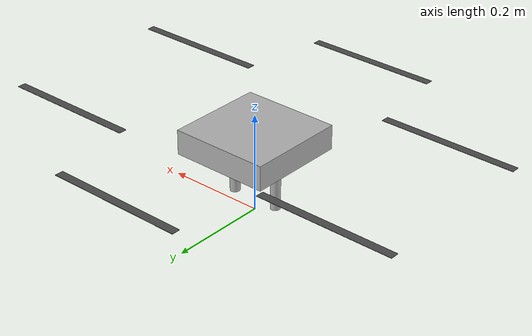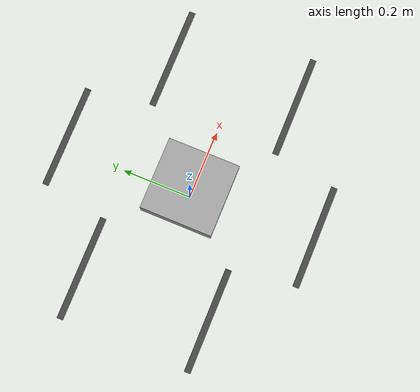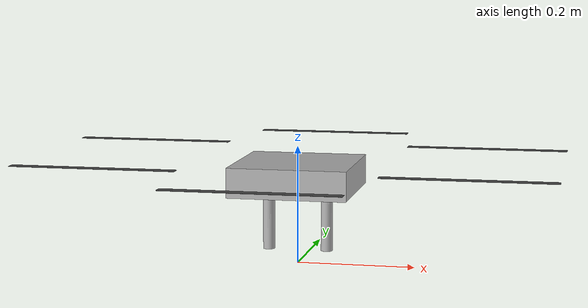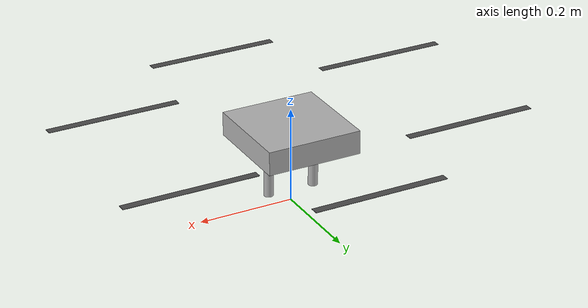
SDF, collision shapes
<?xml version='1.0'?>
<sdf version='1.7'>
<model name='hexacopter_unified'>
  <link name='base_link'>
    <pose>0 0 0.1483 0 0 0</pose>
    <inertial>
      <mass>2</mass>
      <inertia>
        <ixx>0.08</ixx>
        <ixy>0.0</ixy>
        <ixz>0.0</ixz>
        <iyy>0.08</iyy>
        <iyz>0.0</iyz>
        <izz>0.16</izz>
      </inertia>
    </inertial>

    <visual name='visual_box'>
      <pose>0 0 0.0017 0 0 0</pose>
      <geometry><box><size>0.2 0.2 0.05</size></box></geometry>
      <material><ambient>0.7 0.7 0.7 1</ambient><diffuse>0.7 0.7 0.7 1</diffuse></material>
    </visual>
    <collision name='collision_box'>
      <pose>0 0 0.0017 0 0 0</pose>
      <geometry><box><size>0.2 0.2 0.05</size></box></geometry>
    </collision>

    <visual name='arm1_visual'>
      <pose>0.1948 0.1125 0.0017 0 1.5708 0.5236</pose>
      <geometry><cylinder><radius>0.01</radius><length>0.25</length></cylinder></geometry>
      <material><ambient>0.3 0.3 0.8 1</ambient><diffuse>0.3 0.3 0.8 1</diffuse></material>
    </visual>
    <visual name='arm2_visual'>
      <pose>0 0.225 0.0017 0 1.5708 1.5708</pose>
      <geometry><cylinder><radius>0.01</radius><length>0.25</length></cylinder></geometry>
      <material><ambient>0.3 0.3 0.8 1</ambient><diffuse>0.3 0.3 0.8 1</diffuse></material>
    </visual>
    <visual name='arm3_visual'>
      <pose>-0.1948 0.1125 0.0017 0 1.5708 2.618</pose>
      <geometry><cylinder><radius>0.01</radius><length>0.25</length></cylinder></geometry>
      <material><ambient>0.3 0.3 0.8 1</ambient><diffuse>0.3 0.3 0.8 1</diffuse></material>
    </visual>
    <visual name='arm4_visual'>
      <pose>-0.1948 -0.1125 0.0017 0 1.5708 -2.618</pose>
      <geometry><cylinder><radius>0.01</radius><length>0.25</length></cylinder></geometry>
      <material><ambient>0.3 0.3 0.8 1</ambient><diffuse>0.3 0.3 0.8 1</diffuse></material>
    </visual>
    <visual name='arm5_visual'>
      <pose>0 -0.225 0.0017 0 1.5708 -1.5708</pose>
      <geometry><cylinder><radius>0.01</radius><length>0.25</length></cylinder></geometry>
      <material><ambient>0.3 0.3 0.8 1</ambient><diffuse>0.3 0.3 0.8 1</diffuse></material>
    </visual>
    <visual name='arm6_visual'>
      <pose>0.1948 -0.1125 0.0017 0 1.5708 -0.5236</pose>
      <geometry><cylinder><radius>0.01</radius><length>0.25</length></cylinder></geometry>
      <material><ambient>0.3 0.3 0.8 1</ambient><diffuse>0.3 0.3 0.8 1</diffuse></material>
    </visual>

    <visual name='support1_cylinder_visual'>
      <pose>-0.05 0 -0.075 0 0 0</pose>
      <geometry><cylinder><radius>0.01</radius><length>0.10</length></cylinder></geometry>
      <material><ambient>0.5 0.5 0.5 1</ambient><diffuse>0.5 0.5 0.5 1</diffuse></material>
    </visual>
    <visual name='support1_foot_visual'>
      <pose>-0.05 0 -0.130 0 0 0</pose>
      <geometry><box><size>0.05 0.05 0.01</size></box></geometry>
      <material><ambient>0.3 0.3 0.8 1</ambient><diffuse>0.3 0.3 0.8 1</diffuse></material>
    </visual>

    <visual name='support2_cylinder_visual'>
      <pose>0.05 0 -0.075 0 0 0</pose>
      <geometry><cylinder><radius>0.01</radius><length>0.10</length></cylinder></geometry>
      <material><ambient>0.5 0.5 0.5 1</ambient><diffuse>0.5 0.5 0.5 1</diffuse></material>
    </visual>
    <visual name='support2_foot_visual'>
      <pose>0.05 0 -0.130 0 0 0</pose>
      <geometry><box><size>0.05 0.05 0.01</size></box></geometry>
      <material><ambient>0.3 0.3 0.8 1</ambient><diffuse>0.3 0.3 0.8 1</diffuse></material>
    </visual>

    <collision name='support1_collision'>
      <pose>-0.05 0 -0.075 0 0 0</pose>
      <geometry><cylinder><radius>0.01</radius><length>0.10</length></cylinder></geometry>
    </collision>
    <collision name='support2_collision'>
      <pose>0.05 0 -0.075 0 0 0</pose>
      <geometry><cylinder><radius>0.01</radius><length>0.10</length></cylinder></geometry>
    </collision>

    <sensor name="air_pressure_sensor" type="air_pressure">
        <always_on>1</always_on>
        <update_rate>50</update_rate>
        <air_pressure>
          <!-- Noise modeled after BMP390 -->
          <pressure>
            <noise type="gaussian">
              <mean>0</mean>
              <stddev>3</stddev>
            </noise>
          </pressure>
        </air_pressure>
      </sensor>
      <sensor name="magnetometer_sensor" type="magnetometer">
        <always_on>1</always_on>
        <update_rate>100</update_rate>
        <magnetometer>
          <!-- TODO: update to fix units and coordinate system when we move past Harmonic -->
          <!-- See https://github.com/gazebosim/gz-sim/pull/2460 -->
          <!-- 3mgauss RMS: NOTE: noise is in tesla but sensor reports data in gauss -->
          <!-- Noise modeled after IIS2MDC -->
          <x>
            <noise type="gaussian">
              <stddev>0.0001</stddev>
            </noise>
          </x>
          <y>
            <noise type="gaussian">
              <stddev>0.0001</stddev>
            </noise>
          </y>
          <z>
            <noise type="gaussian">
              <stddev>0.0001</stddev>
            </noise>
          </z>
        </magnetometer>
      </sensor>
      <sensor name="imu_sensor" type="imu">
        <always_on>1</always_on>
        <update_rate>250</update_rate>
        <imu>
          <angular_velocity>
            <!-- Noise modeled after IIM42653 -->
            <!-- 0.05 deg/s converted to rad/s -->
            <x>
              <noise type="gaussian">
                <mean>0.0</mean>
                <stddev>0.0008726646</stddev>
              </noise>
            </x>
            <y>
              <noise type="gaussian">
                <mean>0.0</mean>
                <stddev>0.0008726646</stddev>
              </noise>
            </y>
            <z>
              <noise type="gaussian">
                <mean>0.0</mean>
                <stddev>0.0008726646</stddev>
              </noise>
            </z>
          </angular_velocity>
          <linear_acceleration>
            <!-- Noise modeled after IIM42653 -->
            <!-- X & Y axis: 0.65 mg-rms converted to m/ss -->
            <x>
              <noise type="gaussian">
                <mean>0.0</mean>
                <stddev>0.00637</stddev>
              </noise>
            </x>
            <y>
              <noise type="gaussian">
                <mean>0.0</mean>
                <stddev>0.00637</stddev>
              </noise>
            </y>
            <!-- Z axis: 0.70 mg-rms converted to m/ss-->
            <z>
              <noise type="gaussian">
                <mean>0.0</mean>
                <stddev>0.00686</stddev>
              </noise>
            </z>
          </linear_acceleration>
        </imu>
      </sensor>
      <sensor name="navsat_sensor" type="navsat">
        <always_on>1</always_on>
        <update_rate>30</update_rate>
      </sensor>

  </link>

  <link name="rotor_0">
      <gravity>true</gravity>
      <self_collide>false</self_collide>
      <velocity_decay/>
      <pose>0.30305 0.1750 0.18 0 0 0</pose>
      <inertial>
          <mass>0.016076923076923075</mass>
          <inertia>
            <ixx>3.8464910483993325e-07</ixx>
            <iyy>2.6115851691700804e-05</iyy>
            <izz>2.649858234714004e-05</izz>
          </inertia>
        </inertial>
      <visual name="rotor_0_visual">
        <pose>-0.022 -0.14638461538461536 -0.016 0 0 0</pose>
        <geometry>
          <mesh>
            <scale>0.8461538461538461 0.8461538461538461 0.8461538461538461</scale>
            <uri>model://x500_base/meshes/1345_prop_ccw.stl</uri>
          </mesh>
        </geometry>
        <material>
          <script>
            <name>Gazebo/DarkGrey</name>
            <uri>file://media/materials/scripts/gazebo.material</uri>
          </script>
        </material>
      </visual>
      <visual name="rotor_0_visual_motor_bell">
        <pose>0 0 -.032 0 0 0</pose>
        <geometry>
          <mesh>
            <scale>1 1 1</scale>
            <uri>model://x500_base/meshes/5010Bell.dae</uri>
          </mesh>
        </geometry>
      </visual>
      <collision name="rotor_0_collision">
        <pose>0 0 0 0 0 0 </pose>
        <geometry>
          <box>
            <size>0.2792307692307692 0.016923076923076923 0.0008461538461538462</size>
          </box>
        </geometry>
        <surface>
          <contact>
            <ode>
              <min_depth>0.001</min_depth>
              <max_vel>0</max_vel>
            </ode>
          </contact>
          <friction>
            <ode/>
          </friction>
        </surface>
      </collision>
    </link>
    <joint name="rotor_0_joint" type="revolute">
      <parent>base_link</parent>
      <child>rotor_0</child>
      <axis>
        <xyz>0 0 1</xyz>
        <limit>
          <lower>-1e+16</lower>
          <upper>1e+16</upper>
        </limit>
        <dynamics>
          <spring_reference>0</spring_reference>
          <spring_stiffness>0</spring_stiffness>
        </dynamics>
      </axis>
    </joint>

     <link name="rotor_1">
      <gravity>true</gravity>
      <self_collide>false</self_collide>
      <velocity_decay/>
      <pose>0.000 0.350 0.18 0 0 0</pose>
      <inertial>
          <mass>0.016076923076923075</mass>
          <inertia>
            <ixx>3.8464910483993325e-07</ixx>
            <iyy>2.6115851691700804e-05</iyy>
            <izz>2.649858234714004e-05</izz>
          </inertia>
        </inertial>
      <visual name="rotor_1_visual">
        <pose>-0.022 -0.14638461538461536 -0.016 0 0 0</pose>
        <geometry>
          <mesh>
            <scale>0.8461538461538461 0.8461538461538461 0.8461538461538461</scale>
            <uri>model://x500_base/meshes/1345_prop_cw.stl</uri>
          </mesh>
        </geometry>
        <material>
          <script>
            <name>Gazebo/DarkGrey</name>
            <uri>file://media/materials/scripts/gazebo.material</uri>
          </script>
        </material>
      </visual>
      <visual name="rotor_1_visual_motor_top">
        <pose>0 0 -.032 0 0 0</pose>
        <geometry>
          <mesh>
            <scale>1 1 1</scale>
            <uri>model://x500_base/meshes/5010Bell.dae</uri>
          </mesh>
        </geometry>
      </visual>
      <collision name="rotor_1_collision">
        <pose>0 0 0 0 0 0 </pose>
        <geometry>
          <box>
            <size>0.2792307692307692 0.016923076923076923 0.0008461538461538462</size>
          </box>
        </geometry>
        <surface>
          <contact>
            <ode>
              <min_depth>0.001</min_depth>
              <max_vel>0</max_vel>
            </ode>
          </contact>
          <friction>
            <ode/>
          </friction>
        </surface>
      </collision>
    </link>
    <joint name="rotor_1_joint" type="revolute">
      <parent>base_link</parent>
      <child>rotor_1</child>
      <axis>
        <xyz>0 0 1</xyz>
        <limit>
          <lower>-1e+16</lower>
          <upper>1e+16</upper>
        </limit>
        <dynamics>
          <spring_reference>0</spring_reference>
          <spring_stiffness>0</spring_stiffness>
        </dynamics>
      </axis>
    </joint>

    <link name="rotor_2">
      <gravity>true</gravity>
      <self_collide>false</self_collide>
      <velocity_decay/>
      <pose>-0.30305 0.1750 0.18 0 0 0</pose>
      <inertial>
          <mass>0.016076923076923075</mass>
          <inertia>
            <ixx>3.8464910483993325e-07</ixx>
            <iyy>2.6115851691700804e-05</iyy>
            <izz>2.649858234714004e-05</izz>
          </inertia>
        </inertial>
      <visual name="rotor_2_visual">
        <pose>-0.022 -0.14638461538461536 -0.016 0 0 0</pose>
        <geometry>
          <mesh>
            <scale>0.8461538461538461 0.8461538461538461 0.8461538461538461</scale>
            <uri>model://x500_base/meshes/1345_prop_ccw.stl</uri>
          </mesh>
        </geometry>
        <material>
          <script>
            <name>Gazebo/DarkGrey</name>
            <uri>file://media/materials/scripts/gazebo.material</uri>
          </script>
        </material>
      </visual>
      <visual name="rotor_2_visual_motor_top">
        <pose>0 0 -.032 0 0 0</pose>
        <geometry>
          <mesh>
            <scale>1 1 1</scale>
            <uri>model://x500_base/meshes/5010Bell.dae</uri>
          </mesh>
        </geometry>
      </visual>
      <collision name="rotor_2_collision">
        <pose>0 0 0 0 0 0 </pose>
        <geometry>
          <box>
            <size>0.2792307692307692 0.016923076923076923 0.0008461538461538462</size>
          </box>
        </geometry>
        <surface>
          <contact>
            <ode>
              <min_depth>0.001</min_depth>
              <max_vel>0</max_vel>
            </ode>
          </contact>
          <friction>
            <ode/>
          </friction>
        </surface>
      </collision>
    </link>
    <joint name="rotor_2_joint" type="revolute">
      <parent>base_link</parent>
      <child>rotor_2</child>
      <axis>
        <xyz>0 0 1</xyz>
        <limit>
          <lower>-1e+16</lower>
          <upper>1e+16</upper>
        </limit>
        <dynamics>
          <spring_reference>0</spring_reference>
          <spring_stiffness>0</spring_stiffness>
        </dynamics>
      </axis>
    </joint>

    <link name="rotor_3">
      <gravity>true</gravity>
      <self_collide>false</self_collide>
      <velocity_decay/>
      <pose>-0.30305 -0.1750 0.18 0 0 0</pose>
      <inertial>
          <mass>0.016076923076923075</mass>
          <inertia>
            <ixx>3.8464910483993325e-07</ixx>
            <iyy>2.6115851691700804e-05</iyy>
            <izz>2.649858234714004e-05</izz>
          </inertia>
        </inertial>
      <visual name="rotor_3_visual">
        <pose>-0.022 -0.14638461538461536 -0.016 0 0 0</pose>
        <geometry>
          <mesh>
            <scale>0.8461538461538461 0.8461538461538461 0.8461538461538461</scale>
            <uri>model://x500_base/meshes/1345_prop_cw.stl</uri>
          </mesh>
        </geometry>
        <material>
          <script>
            <name>Gazebo/DarkGrey</name>
            <uri>file://media/materials/scripts/gazebo.material</uri>
          </script>
        </material>
      </visual>
      <visual name="rotor_3_visual_motor_top">
        <pose>0 0 -.032 0 0 0</pose>
        <geometry>
          <mesh>
            <scale>1 1 1</scale>
            <uri>model://x500_base/meshes/5010Bell.dae</uri>
          </mesh>
        </geometry>
      </visual>
      <collision name="rotor_3_collision">
        <pose>0 0 0 0 0 0 </pose>
        <geometry>
          <box>
            <size>0.2792307692307692 0.016923076923076923 0.0008461538461538462</size>
          </box>
        </geometry>
        <surface>
          <contact>
            <ode>
              <min_depth>0.001</min_depth>
              <max_vel>0</max_vel>
            </ode>
          </contact>
          <friction>
            <ode/>
          </friction>
        </surface>
      </collision>
    </link>
    <joint name="rotor_3_joint" type="revolute">
      <parent>base_link</parent>
      <child>rotor_3</child>
      <axis>
        <xyz>0 0 1</xyz>
        <limit>
          <lower>-1e+16</lower>
          <upper>1e+16</upper>
        </limit>
        <dynamics>
          <spring_reference>0</spring_reference>
          <spring_stiffness>0</spring_stiffness>
        </dynamics>
      </axis>
    </joint>

    <link name="rotor_4">
      <gravity>true</gravity>
      <self_collide>false</self_collide>
      <velocity_decay/>
      <pose>0.000 -0.350 0.18 0 0 0</pose>
      <inertial>
          <mass>0.016076923076923075</mass>
          <inertia>
            <ixx>3.8464910483993325e-07</ixx>
            <iyy>2.6115851691700804e-05</iyy>
            <izz>2.649858234714004e-05</izz>
          </inertia>
        </inertial>
      <visual name="rotor_4_visual">
        <pose>-0.022 -0.14638461538461536 -0.016 0 0 0</pose>
        <geometry>
          <mesh>
            <scale>0.8461538461538461 0.8461538461538461 0.8461538461538461</scale>
            <uri>model://x500_base/meshes/1345_prop_ccw.stl</uri>
          </mesh>
        </geometry>
        <material>
          <script>
            <name>Gazebo/DarkGrey</name>
            <uri>file://media/materials/scripts/gazebo.material</uri>
          </script>
        </material>
      </visual>
      <visual name="rotor_4_visual_motor_top">
        <pose>0 0 -.032 0 0 0</pose>
        <geometry>
          <mesh>
            <scale>1 1 1</scale>
            <uri>model://x500_base/meshes/5010Bell.dae</uri>
          </mesh>
        </geometry>
      </visual>
      <collision name="rotor_4_collision">
        <pose>0 0 0 0 0 0 </pose>
        <geometry>
          <box>
            <size>0.2792307692307692 0.016923076923076923 0.0008461538461538462</size>
          </box>
        </geometry>
        <surface>
          <contact>
            <ode>
              <min_depth>0.001</min_depth>
              <max_vel>0</max_vel>
            </ode>
          </contact>
          <friction>
            <ode/>
          </friction>
        </surface>
      </collision>
    </link>
    <joint name="rotor_4_joint" type="revolute">
      <parent>base_link</parent>
      <child>rotor_4</child>
      <axis>
        <xyz>0 0 1</xyz>
        <limit>
          <lower>-1e+16</lower>
          <upper>1e+16</upper>
        </limit>
        <dynamics>
          <spring_reference>0</spring_reference>
          <spring_stiffness>0</spring_stiffness>
        </dynamics>
      </axis>
    </joint>

    <link name="rotor_5">
      <gravity>true</gravity>
      <self_collide>false</self_collide>
      <velocity_decay/>
      <pose>0.30305 -0.1750 0.18 0 0 0</pose>
      <inertial>
          <mass>0.016076923076923075</mass>
          <inertia>
            <ixx>3.8464910483993325e-07</ixx>
            <iyy>2.6115851691700804e-05</iyy>
            <izz>2.649858234714004e-05</izz>
          </inertia>
        </inertial>
      <visual name="rotor_5_visual">
        <pose>-0.022 -0.14638461538461536 -0.016 0 0 0</pose>
        <geometry>
          <mesh>
            <scale>0.8461538461538461 0.8461538461538461 0.8461538461538461</scale>
            <uri>model://x500_base/meshes/1345_prop_cw.stl</uri>
          </mesh>
        </geometry>
        <material>
          <script>
            <name>Gazebo/DarkGrey</name>
            <uri>file://media/materials/scripts/gazebo.material</uri>
          </script>
        </material>
      </visual>
      <visual name="rotor_5_visual_motor_top">
        <pose>0 0 -.032 0 0 0</pose>
        <geometry>
          <mesh>
            <scale>1 1 1</scale>
            <uri>model://x500_base/meshes/5010Bell.dae</uri>
          </mesh>
        </geometry>
      </visual>
      <collision name="rotor_5_collision">
        <pose>0 0 0 0 0 0 </pose>
        <geometry>
          <box>
            <size>0.2792307692307692 0.016923076923076923 0.0008461538461538462</size>
          </box>
        </geometry>
        <surface>
          <contact>
            <ode>
              <min_depth>0.001</min_depth>
              <max_vel>0</max_vel>
            </ode>
          </contact>
          <friction>
            <ode/>
          </friction>
        </surface>
      </collision>
    </link>
    <joint name="rotor_5_joint" type="revolute">
      <parent>base_link</parent>
      <child>rotor_5</child>
      <axis>
        <xyz>0 0 1</xyz>
        <limit>
          <lower>-1e+16</lower>
          <upper>1e+16</upper>
        </limit>
        <dynamics>
          <spring_reference>0</spring_reference>
          <spring_stiffness>0</spring_stiffness>
        </dynamics>
      </axis>
    </joint>

  	<plugin filename="gz-sim-multicopter-motor-model-system" name="gz::sim::systems::MulticopterMotorModel">

	      <jointName>rotor_0_joint</jointName>
	      <linkName>rotor_0</linkName>
	      <turningDirection>ccw</turningDirection>
	      <timeConstantUp>0.0125</timeConstantUp>
	      <timeConstantDown>0.025</timeConstantDown>
	      <maxRotVelocity>1000.0</maxRotVelocity>
	      <motorConstant>8.54858e-06</motorConstant>
	      <momentConstant>0.016</momentConstant>
	      <commandSubTopic>command/motor_speed</commandSubTopic>
	      <motorNumber>0</motorNumber>
	      <rotorDragCoefficient>8.06428e-05</rotorDragCoefficient>
	      <rollingMomentCoefficient>1e-06</rollingMomentCoefficient>
	      <rotorVelocitySlowdownSim>10</rotorVelocitySlowdownSim>
	      <motorType>velocity</motorType>
	 </plugin>

	 <plugin filename="gz-sim-multicopter-motor-model-system" name="gz::sim::systems::MulticopterMotorModel">

	      <jointName>rotor_1_joint</jointName>
	      <linkName>rotor_1</linkName>
	      <turningDirection>cw</turningDirection>
	      <timeConstantUp>0.0125</timeConstantUp>
	      <timeConstantDown>0.025</timeConstantDown>
	      <maxRotVelocity>1000.0</maxRotVelocity>
	      <motorConstant>8.54858e-06</motorConstant>
	      <momentConstant>0.016</momentConstant>
	      <commandSubTopic>command/motor_speed</commandSubTopic>
	      <motorNumber>1</motorNumber>
	      <rotorDragCoefficient>8.06428e-05</rotorDragCoefficient>
	      <rollingMomentCoefficient>1e-06</rollingMomentCoefficient>
	      <rotorVelocitySlowdownSim>10</rotorVelocitySlowdownSim>
	      <motorType>velocity</motorType>

          </plugin>

          <plugin filename="gz-sim-multicopter-motor-model-system" name="gz::sim::systems::MulticopterMotorModel">

	      <jointName>rotor_2_joint</jointName>
	      <linkName>rotor_2</linkName>
	      <turningDirection>ccw</turningDirection>
	      <timeConstantUp>0.0125</timeConstantUp>
	      <timeConstantDown>0.025</timeConstantDown>
	      <maxRotVelocity>1000.0</maxRotVelocity>
	      <motorConstant>8.54858e-06</motorConstant>
	      <momentConstant>0.016</momentConstant>
	      <commandSubTopic>command/motor_speed</commandSubTopic>
	      <motorNumber>2</motorNumber>
	      <rotorDragCoefficient>8.06428e-05</rotorDragCoefficient>
	      <rollingMomentCoefficient>1e-06</rollingMomentCoefficient>
	      <rotorVelocitySlowdownSim>10</rotorVelocitySlowdownSim>
	      <motorType>velocity</motorType>
	  </plugin>

          <plugin filename="gz-sim-multicopter-motor-model-system" name="gz::sim::systems::MulticopterMotorModel">

	      <jointName>rotor_3_joint</jointName>
	      <linkName>rotor_3</linkName>
	      <turningDirection>cw</turningDirection>
	      <timeConstantUp>0.0125</timeConstantUp>
	      <timeConstantDown>0.025</timeConstantDown>
	      <maxRotVelocity>1000.0</maxRotVelocity>
	      <motorConstant>8.54858e-06</motorConstant>
	      <momentConstant>0.016</momentConstant>
	      <commandSubTopic>command/motor_speed</commandSubTopic>
	      <motorNumber>3</motorNumber>
	      <rotorDragCoefficient>8.06428e-05</rotorDragCoefficient>
	      <rollingMomentCoefficient>1e-06</rollingMomentCoefficient>
	      <rotorVelocitySlowdownSim>10</rotorVelocitySlowdownSim>
	      <motorType>velocity</motorType>

          </plugin>

          <plugin filename="gz-sim-multicopter-motor-model-system" name="gz::sim::systems::MulticopterMotorModel">

	      <jointName>rotor_4_joint</jointName>
	      <linkName>rotor_4</linkName>
	      <turningDirection>ccw</turningDirection>
	      <timeConstantUp>0.0125</timeConstantUp>
	      <timeConstantDown>0.025</timeConstantDown>
	      <maxRotVelocity>1000.0</maxRotVelocity>
	      <motorConstant>8.54858e-06</motorConstant>
	      <momentConstant>0.016</momentConstant>
	      <commandSubTopic>command/motor_speed</commandSubTopic>
	      <motorNumber>4</motorNumber>
	      <rotorDragCoefficient>8.06428e-05</rotorDragCoefficient>
	      <rollingMomentCoefficient>1e-06</rollingMomentCoefficient>
	      <rotorVelocitySlowdownSim>10</rotorVelocitySlowdownSim>
	      <motorType>velocity</motorType>
	  </plugin>

          <plugin filename="gz-sim-multicopter-motor-model-system" name="gz::sim::systems::MulticopterMotorModel">

	      <jointName>rotor_5_joint</jointName>
	      <linkName>rotor_5</linkName>
	      <turningDirection>cw</turningDirection>
	      <timeConstantUp>0.0125</timeConstantUp>
	      <timeConstantDown>0.025</timeConstantDown>
	      <maxRotVelocity>1000.0</maxRotVelocity>
	      <motorConstant>8.54858e-06</motorConstant>
	      <momentConstant>0.016</momentConstant>
	      <commandSubTopic>command/motor_speed</commandSubTopic>
	      <motorNumber>5</motorNumber>
	      <rotorDragCoefficient>8.06428e-05</rotorDragCoefficient>
	      <rollingMomentCoefficient>1e-06</rollingMomentCoefficient>
	      <rotorVelocitySlowdownSim>10</rotorVelocitySlowdownSim>
	      <motorType>velocity</motorType>
	  </plugin>
 </model>
</sdf>
